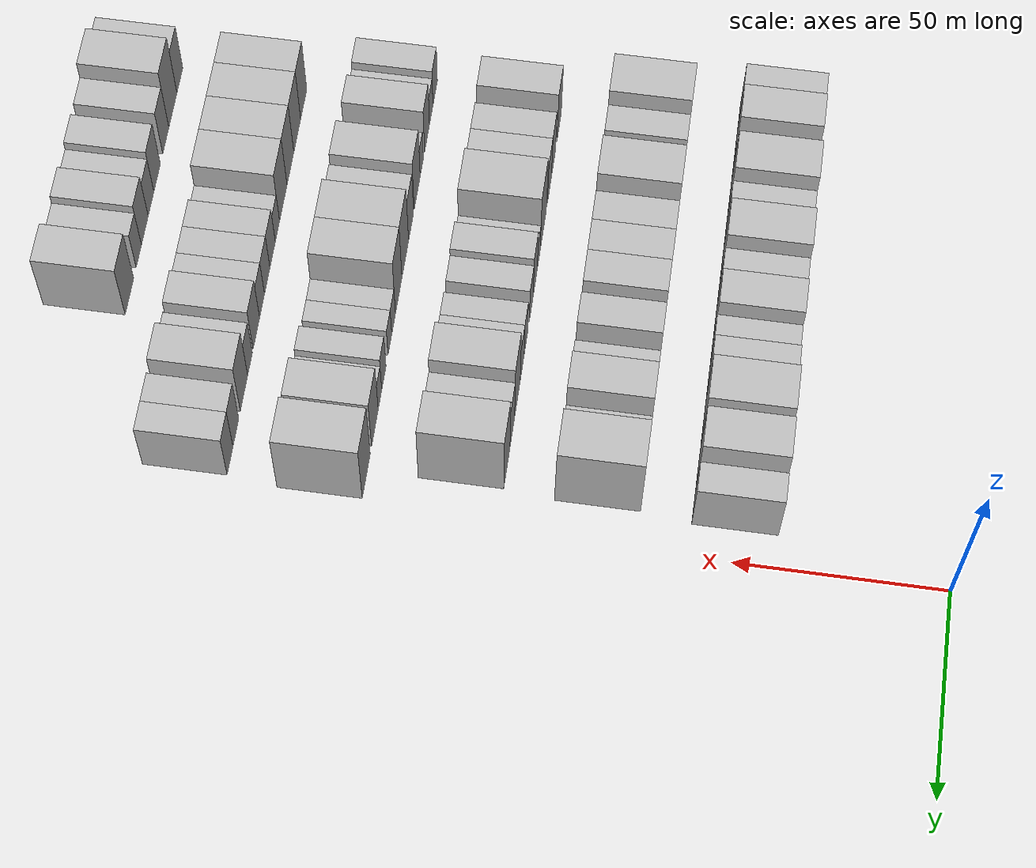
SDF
<sdf version="1.6">
 <world name="default">
  <model name="building_43">
   <static>1</static>
   <pose>50.0000 -120.1200 0 0.000000 0.000000 0.000000</pose>
   <link name="link">
    <pose>0 0 9.00 0 0 0</pose>
    <collision name="collision"><geometry><box><size>20.0000 8.0174 18.0000</size></box></geometry></collision>
    <visual name="visual">
     <cast_shadows>0</cast_shadows>
     <geometry><box><size>20.0000 8.0174 18.0000</size></box></geometry>
     <material>
      <script>
       <uri>model://HANNAS_wall/materials/scripts</uri>
       <uri>model://HANNAS_wall/materials/textures</uri>
       <name>vrc/HANNAS_wall</name>
      </script>
     </material>
    </visual>
   </link>
  </model>
  <model name="building_44">
   <static>1</static>
   <pose>50.0000 -111.3945 0 0.000000 0.000000 0.000000</pose>
   <link name="link">
    <pose>0 0 10.50 0 0 0</pose>
    <collision name="collision"><geometry><box><size>20.0000 9.4337 21.0000</size></box></geometry></collision>
    <visual name="visual">
     <cast_shadows>0</cast_shadows>
     <geometry><box><size>20.0000 9.4337 21.0000</size></box></geometry>
     <material>
      <script>
       <uri>model://HANNAS_wall/materials/scripts</uri>
       <uri>model://HANNAS_wall/materials/textures</uri>
       <name>vrc/HANNAS_wall</name>
      </script>
     </material>
    </visual>
   </link>
  </model>
  <model name="building_45">
   <static>1</static>
   <pose>50.0000 -103.7214 0 0.000000 0.000000 0.000000</pose>
   <link name="link">
    <pose>0 0 6.00 0 0 0</pose>
    <collision name="collision"><geometry><box><size>20.0000 5.9125 12.0000</size></box></geometry></collision>
    <visual name="visual">
     <cast_shadows>0</cast_shadows>
     <geometry><box><size>20.0000 5.9125 12.0000</size></box></geometry>
     <material>
      <script>
       <uri>model://HANNAS_wall/materials/scripts</uri>
       <uri>model://HANNAS_wall/materials/textures</uri>
       <name>vrc/HANNAS_wall</name>
      </script>
     </material>
    </visual>
   </link>
  </model>
  <model name="building_46">
   <static>1</static>
   <pose>50.0000 -95.5847 0 0.000000 0.000000 0.000000</pose>
   <link name="link">
    <pose>0 0 12.00 0 0 0</pose>
    <collision name="collision"><geometry><box><size>20.0000 10.3608 24.0000</size></box></geometry></collision>
    <visual name="visual">
     <cast_shadows>0</cast_shadows>
     <geometry><box><size>20.0000 10.3608 24.0000</size></box></geometry>
     <material>
      <script>
       <uri>model://HANNAS_wall/materials/scripts</uri>
       <uri>model://HANNAS_wall/materials/textures</uri>
       <name>vrc/HANNAS_wall</name>
      </script>
     </material>
    </visual>
   </link>
  </model>
  <model name="building_47">
   <static>1</static>
   <pose>50.0000 -86.1859 0 0.000000 0.000000 0.000000</pose>
   <link name="link">
    <pose>0 0 9.00 0 0 0</pose>
    <collision name="collision"><geometry><box><size>20.0000 8.4368 18.0000</size></box></geometry></collision>
    <visual name="visual">
     <cast_shadows>0</cast_shadows>
     <geometry><box><size>20.0000 8.4368 18.0000</size></box></geometry>
     <material>
      <script>
       <uri>model://HANNAS_wall/materials/scripts</uri>
       <uri>model://HANNAS_wall/materials/textures</uri>
       <name>vrc/HANNAS_wall</name>
      </script>
     </material>
    </visual>
   </link>
  </model>
  <model name="building_48">
   <static>1</static>
   <pose>50.0000 -76.9097 0 0.000000 0.000000 0.000000</pose>
   <link name="link">
    <pose>0 0 12.00 0 0 0</pose>
    <collision name="collision"><geometry><box><size>20.0000 10.1156 24.0000</size></box></geometry></collision>
    <visual name="visual">
     <cast_shadows>0</cast_shadows>
     <geometry><box><size>20.0000 10.1156 24.0000</size></box></geometry>
     <material>
      <script>
       <uri>model://HANNAS_wall/materials/scripts</uri>
       <uri>model://HANNAS_wall/materials/textures</uri>
       <name>vrc/HANNAS_wall</name>
      </script>
     </material>
    </visual>
   </link>
  </model>
  <model name="building_49">
   <static>1</static>
   <pose>50.0000 -68.1743 0 0.000000 0.000000 0.000000</pose>
   <link name="link">
    <pose>0 0 9.00 0 0 0</pose>
    <collision name="collision"><geometry><box><size>20.0000 7.3551 18.0000</size></box></geometry></collision>
    <visual name="visual">
     <cast_shadows>0</cast_shadows>
     <geometry><box><size>20.0000 7.3551 18.0000</size></box></geometry>
     <material>
      <script>
       <uri>model://HANNAS_wall/materials/scripts</uri>
       <uri>model://HANNAS_wall/materials/textures</uri>
       <name>vrc/HANNAS_wall</name>
      </script>
     </material>
    </visual>
   </link>
  </model>
  <model name="building_50">
   <static>1</static>
   <pose>50.0000 -59.9899 0 0.000000 0.000000 0.000000</pose>
   <link name="link">
    <pose>0 0 10.50 0 0 0</pose>
    <collision name="collision"><geometry><box><size>20.0000 9.0137 21.0000</size></box></geometry></collision>
    <visual name="visual">
     <cast_shadows>0</cast_shadows>
     <geometry><box><size>20.0000 9.0137 21.0000</size></box></geometry>
     <material>
      <script>
       <uri>model://HANNAS_wall/materials/scripts</uri>
       <uri>model://HANNAS_wall/materials/textures</uri>
       <name>vrc/HANNAS_wall</name>
      </script>
     </material>
    </visual>
   </link>
  </model>
  <model name="building_51">
   <static>1</static>
   <pose>50.0000 -51.9817 0 0.000000 0.000000 0.000000</pose>
   <link name="link">
    <pose>0 0 7.50 0 0 0</pose>
    <collision name="collision"><geometry><box><size>20.0000 7.0027 15.0000</size></box></geometry></collision>
    <visual name="visual">
     <cast_shadows>0</cast_shadows>
     <geometry><box><size>20.0000 7.0027 15.0000</size></box></geometry>
     <material>
      <script>
       <uri>model://HANNAS_wall/materials/scripts</uri>
       <uri>model://HANNAS_wall/materials/textures</uri>
       <name>vrc/HANNAS_wall</name>
      </script>
     </material>
    </visual>
   </link>
  </model>
  <model name="building_52">
   <static>1</static>
   <pose>50.0000 -44.2990 0 0.000000 0.000000 0.000000</pose>
   <link name="link">
    <pose>0 0 9.00 0 0 0</pose>
    <collision name="collision"><geometry><box><size>20.0000 8.3628 18.0000</size></box></geometry></collision>
    <visual name="visual">
     <cast_shadows>0</cast_shadows>
     <geometry><box><size>20.0000 8.3628 18.0000</size></box></geometry>
     <material>
      <script>
       <uri>model://HANNAS_wall/materials/scripts</uri>
       <uri>model://HANNAS_wall/materials/textures</uri>
       <name>vrc/HANNAS_wall</name>
      </script>
     </material>
    </visual>
   </link>
  </model>
  <model name="building_53">
   <static>1</static>
   <pose>50.0000 -34.5240 0 0.000000 0.000000 0.000000</pose>
   <link name="link">
    <pose>0 0 12.00 0 0 0</pose>
    <collision name="collision"><geometry><box><size>20.0000 11.1871 24.0000</size></box></geometry></collision>
    <visual name="visual">
     <cast_shadows>0</cast_shadows>
     <geometry><box><size>20.0000 11.1871 24.0000</size></box></geometry>
     <material>
      <script>
       <uri>model://HANNAS_wall/materials/scripts</uri>
       <uri>model://HANNAS_wall/materials/textures</uri>
       <name>vrc/HANNAS_wall</name>
      </script>
     </material>
    </visual>
   </link>
  </model>
  <model name="building_54">
   <static>1</static>
   <pose>50.0000 -21.7975 0 0.000000 0.000000 0.000000</pose>
   <link name="link">
    <pose>0 0 12.00 0 0 0</pose>
    <collision name="collision"><geometry><box><size>20.0000 10.2659 24.0000</size></box></geometry></collision>
    <visual name="visual">
     <cast_shadows>0</cast_shadows>
     <geometry><box><size>20.0000 10.2659 24.0000</size></box></geometry>
     <material>
      <script>
       <uri>model://HANNAS_wall/materials/scripts</uri>
       <uri>model://HANNAS_wall/materials/textures</uri>
       <name>vrc/HANNAS_wall</name>
      </script>
     </material>
    </visual>
   </link>
  </model>
  <model name="building_55">
   <static>1</static>
   <pose>50.0000 -11.9538 0 0.000000 0.000000 0.000000</pose>
   <link name="link">
    <pose>0 0 9.00 0 0 0</pose>
    <collision name="collision"><geometry><box><size>20.0000 7.4216 18.0000</size></box></geometry></collision>
    <visual name="visual">
     <cast_shadows>0</cast_shadows>
     <geometry><box><size>20.0000 7.4216 18.0000</size></box></geometry>
     <material>
      <script>
       <uri>model://HANNAS_wall/materials/scripts</uri>
       <uri>model://HANNAS_wall/materials/textures</uri>
       <name>vrc/HANNAS_wall</name>
      </script>
     </material>
    </visual>
   </link>
  </model>
  <model name="building_163">
   <static>1</static>
   <pose>82.0000 -112.9724 0 0.000000 0.000000 0.000000</pose>
   <link name="link">
    <pose>0 0 12.00 0 0 0</pose>
    <collision name="collision"><geometry><box><size>20.0000 10.8261 24.0000</size></box></geometry></collision>
    <visual name="visual">
     <cast_shadows>0</cast_shadows>
     <geometry><box><size>20.0000 10.8261 24.0000</size></box></geometry>
     <material>
      <script>
       <uri>model://HANNAS_wall/materials/scripts</uri>
       <uri>model://HANNAS_wall/materials/textures</uri>
       <name>vrc/HANNAS_wall</name>
      </script>
     </material>
    </visual>
   </link>
  </model>
  <model name="building_164">
   <static>1</static>
   <pose>82.0000 -103.8684 0 0.000000 0.000000 0.000000</pose>
   <link name="link">
    <pose>0 0 9.00 0 0 0</pose>
    <collision name="collision"><geometry><box><size>20.0000 7.3819 18.0000</size></box></geometry></collision>
    <visual name="visual">
     <cast_shadows>0</cast_shadows>
     <geometry><box><size>20.0000 7.3819 18.0000</size></box></geometry>
     <material>
      <script>
       <uri>model://HANNAS_wall/materials/scripts</uri>
       <uri>model://HANNAS_wall/materials/textures</uri>
       <name>vrc/HANNAS_wall</name>
      </script>
     </material>
    </visual>
   </link>
  </model>
  <model name="building_165">
   <static>1</static>
   <pose>82.0000 -97.5596 0 0.000000 0.000000 0.000000</pose>
   <link name="link">
    <pose>0 0 6.00 0 0 0</pose>
    <collision name="collision"><geometry><box><size>20.0000 5.2356 12.0000</size></box></geometry></collision>
    <visual name="visual">
     <cast_shadows>0</cast_shadows>
     <geometry><box><size>20.0000 5.2356 12.0000</size></box></geometry>
     <material>
      <script>
       <uri>model://HANNAS_wall/materials/scripts</uri>
       <uri>model://HANNAS_wall/materials/textures</uri>
       <name>vrc/HANNAS_wall</name>
      </script>
     </material>
    </visual>
   </link>
  </model>
  <model name="building_166">
   <static>1</static>
   <pose>82.0000 -89.5255 0 0.000000 0.000000 0.000000</pose>
   <link name="link">
    <pose>0 0 12.00 0 0 0</pose>
    <collision name="collision"><geometry><box><size>20.0000 10.8327 24.0000</size></box></geometry></collision>
    <visual name="visual">
     <cast_shadows>0</cast_shadows>
     <geometry><box><size>20.0000 10.8327 24.0000</size></box></geometry>
     <material>
      <script>
       <uri>model://HANNAS_wall/materials/scripts</uri>
       <uri>model://HANNAS_wall/materials/textures</uri>
       <name>vrc/HANNAS_wall</name>
      </script>
     </material>
    </visual>
   </link>
  </model>
  <model name="building_167">
   <static>1</static>
   <pose>82.0000 -79.1607 0 0.000000 0.000000 0.000000</pose>
   <link name="link">
    <pose>0 0 9.00 0 0 0</pose>
    <collision name="collision"><geometry><box><size>20.0000 7.8969 18.0000</size></box></geometry></collision>
    <visual name="visual">
     <cast_shadows>0</cast_shadows>
     <geometry><box><size>20.0000 7.8969 18.0000</size></box></geometry>
     <material>
      <script>
       <uri>model://HANNAS_wall/materials/scripts</uri>
       <uri>model://HANNAS_wall/materials/textures</uri>
       <name>vrc/HANNAS_wall</name>
      </script>
     </material>
    </visual>
   </link>
  </model>
  <model name="building_168">
   <static>1</static>
   <pose>82.0000 -71.0392 0 0.000000 0.000000 0.000000</pose>
   <link name="link">
    <pose>0 0 9.00 0 0 0</pose>
    <collision name="collision"><geometry><box><size>20.0000 8.3460 18.0000</size></box></geometry></collision>
    <visual name="visual">
     <cast_shadows>0</cast_shadows>
     <geometry><box><size>20.0000 8.3460 18.0000</size></box></geometry>
     <material>
      <script>
       <uri>model://HANNAS_wall/materials/scripts</uri>
       <uri>model://HANNAS_wall/materials/textures</uri>
       <name>vrc/HANNAS_wall</name>
      </script>
     </material>
    </visual>
   </link>
  </model>
  <model name="building_169">
   <static>1</static>
   <pose>82.0000 -62.5999 0 0.000000 0.000000 0.000000</pose>
   <link name="link">
    <pose>0 0 9.00 0 0 0</pose>
    <collision name="collision"><geometry><box><size>20.0000 8.5327 18.0000</size></box></geometry></collision>
    <visual name="visual">
     <cast_shadows>0</cast_shadows>
     <geometry><box><size>20.0000 8.5327 18.0000</size></box></geometry>
     <material>
      <script>
       <uri>model://HANNAS_wall/materials/scripts</uri>
       <uri>model://HANNAS_wall/materials/textures</uri>
       <name>vrc/HANNAS_wall</name>
      </script>
     </material>
    </visual>
   </link>
  </model>
  <model name="building_170">
   <static>1</static>
   <pose>82.0000 -51.2409 0 0.000000 0.000000 0.000000</pose>
   <link name="link">
    <pose>0 0 9.00 0 0 0</pose>
    <collision name="collision"><geometry><box><size>20.0000 8.1854 18.0000</size></box></geometry></collision>
    <visual name="visual">
     <cast_shadows>0</cast_shadows>
     <geometry><box><size>20.0000 8.1854 18.0000</size></box></geometry>
     <material>
      <script>
       <uri>model://HANNAS_wall/materials/scripts</uri>
       <uri>model://HANNAS_wall/materials/textures</uri>
       <name>vrc/HANNAS_wall</name>
      </script>
     </material>
    </visual>
   </link>
  </model>
  <model name="building_171">
   <static>1</static>
   <pose>82.0000 -41.0867 0 0.000000 0.000000 0.000000</pose>
   <link name="link">
    <pose>0 0 7.50 0 0 0</pose>
    <collision name="collision"><geometry><box><size>20.0000 6.1229 15.0000</size></box></geometry></collision>
    <visual name="visual">
     <cast_shadows>0</cast_shadows>
     <geometry><box><size>20.0000 6.1229 15.0000</size></box></geometry>
     <material>
      <script>
       <uri>model://HANNAS_wall/materials/scripts</uri>
       <uri>model://HANNAS_wall/materials/textures</uri>
       <name>vrc/HANNAS_wall</name>
      </script>
     </material>
    </visual>
   </link>
  </model>
  <model name="building_172">
   <static>1</static>
   <pose>82.0000 -33.2892 0 0.000000 0.000000 0.000000</pose>
   <link name="link">
    <pose>0 0 10.50 0 0 0</pose>
    <collision name="collision"><geometry><box><size>20.0000 9.4721 21.0000</size></box></geometry></collision>
    <visual name="visual">
     <cast_shadows>0</cast_shadows>
     <geometry><box><size>20.0000 9.4721 21.0000</size></box></geometry>
     <material>
      <script>
       <uri>model://HANNAS_wall/materials/scripts</uri>
       <uri>model://HANNAS_wall/materials/textures</uri>
       <name>vrc/HANNAS_wall</name>
      </script>
     </material>
    </visual>
   </link>
  </model>
  <model name="building_173">
   <static>1</static>
   <pose>82.0000 -25.5688 0 0.000000 0.000000 0.000000</pose>
   <link name="link">
    <pose>0 0 6.00 0 0 0</pose>
    <collision name="collision"><geometry><box><size>20.0000 5.9687 12.0000</size></box></geometry></collision>
    <visual name="visual">
     <cast_shadows>0</cast_shadows>
     <geometry><box><size>20.0000 5.9687 12.0000</size></box></geometry>
     <material>
      <script>
       <uri>model://HANNAS_wall/materials/scripts</uri>
       <uri>model://HANNAS_wall/materials/textures</uri>
       <name>vrc/HANNAS_wall</name>
      </script>
     </material>
    </visual>
   </link>
  </model>
  <model name="building_174">
   <static>1</static>
   <pose>82.0000 -15.6817 0 0.000000 0.000000 0.000000</pose>
   <link name="link">
    <pose>0 0 12.00 0 0 0</pose>
    <collision name="collision"><geometry><box><size>20.0000 11.8055 24.0000</size></box></geometry></collision>
    <visual name="visual">
     <cast_shadows>0</cast_shadows>
     <geometry><box><size>20.0000 11.8055 24.0000</size></box></geometry>
     <material>
      <script>
       <uri>model://HANNAS_wall/materials/scripts</uri>
       <uri>model://HANNAS_wall/materials/textures</uri>
       <name>vrc/HANNAS_wall</name>
      </script>
     </material>
    </visual>
   </link>
  </model>
  <model name="building_287">
   <static>1</static>
   <pose>114.0000 -110.9014 0 0.000000 0.000000 0.000000</pose>
   <link name="link">
    <pose>0 0 10.50 0 0 0</pose>
    <collision name="collision"><geometry><box><size>20.0000 8.5832 21.0000</size></box></geometry></collision>
    <visual name="visual">
     <cast_shadows>0</cast_shadows>
     <geometry><box><size>20.0000 8.5832 21.0000</size></box></geometry>
     <material>
      <script>
       <uri>model://HANNAS_wall/materials/scripts</uri>
       <uri>model://HANNAS_wall/materials/textures</uri>
       <name>vrc/HANNAS_wall</name>
      </script>
     </material>
    </visual>
   </link>
  </model>
  <model name="building_288">
   <static>1</static>
   <pose>114.0000 -99.8708 0 0.000000 0.000000 0.000000</pose>
   <link name="link">
    <pose>0 0 9.00 0 0 0</pose>
    <collision name="collision"><geometry><box><size>20.0000 7.4781 18.0000</size></box></geometry></collision>
    <visual name="visual">
     <cast_shadows>0</cast_shadows>
     <geometry><box><size>20.0000 7.4781 18.0000</size></box></geometry>
     <material>
      <script>
       <uri>model://HANNAS_wall/materials/scripts</uri>
       <uri>model://HANNAS_wall/materials/textures</uri>
       <name>vrc/HANNAS_wall</name>
      </script>
     </material>
    </visual>
   </link>
  </model>
  <model name="building_289">
   <static>1</static>
   <pose>114.0000 -92.3805 0 0.000000 0.000000 0.000000</pose>
   <link name="link">
    <pose>0 0 9.00 0 0 0</pose>
    <collision name="collision"><geometry><box><size>20.0000 7.5025 18.0000</size></box></geometry></collision>
    <visual name="visual">
     <cast_shadows>0</cast_shadows>
     <geometry><box><size>20.0000 7.5025 18.0000</size></box></geometry>
     <material>
      <script>
       <uri>model://HANNAS_wall/materials/scripts</uri>
       <uri>model://HANNAS_wall/materials/textures</uri>
       <name>vrc/HANNAS_wall</name>
      </script>
     </material>
    </visual>
   </link>
  </model>
  <model name="building_290">
   <static>1</static>
   <pose>114.0000 -80.9070 0 0.000000 0.000000 0.000000</pose>
   <link name="link">
    <pose>0 0 12.00 0 0 0</pose>
    <collision name="collision"><geometry><box><size>20.0000 11.4444 24.0000</size></box></geometry></collision>
    <visual name="visual">
     <cast_shadows>0</cast_shadows>
     <geometry><box><size>20.0000 11.4444 24.0000</size></box></geometry>
     <material>
      <script>
       <uri>model://HANNAS_wall/materials/scripts</uri>
       <uri>model://HANNAS_wall/materials/textures</uri>
       <name>vrc/HANNAS_wall</name>
      </script>
     </material>
    </visual>
   </link>
  </model>
  <model name="building_291">
   <static>1</static>
   <pose>114.0000 -72.4926 0 0.000000 0.000000 0.000000</pose>
   <link name="link">
    <pose>0 0 6.00 0 0 0</pose>
    <collision name="collision"><geometry><box><size>20.0000 5.3844 12.0000</size></box></geometry></collision>
    <visual name="visual">
     <cast_shadows>0</cast_shadows>
     <geometry><box><size>20.0000 5.3844 12.0000</size></box></geometry>
     <material>
      <script>
       <uri>model://HANNAS_wall/materials/scripts</uri>
       <uri>model://HANNAS_wall/materials/textures</uri>
       <name>vrc/HANNAS_wall</name>
      </script>
     </material>
    </visual>
   </link>
  </model>
  <model name="building_292">
   <static>1</static>
   <pose>114.0000 -66.0645 0 0.000000 0.000000 0.000000</pose>
   <link name="link">
    <pose>0 0 9.00 0 0 0</pose>
    <collision name="collision"><geometry><box><size>20.0000 7.4717 18.0000</size></box></geometry></collision>
    <visual name="visual">
     <cast_shadows>0</cast_shadows>
     <geometry><box><size>20.0000 7.4717 18.0000</size></box></geometry>
     <material>
      <script>
       <uri>model://HANNAS_wall/materials/scripts</uri>
       <uri>model://HANNAS_wall/materials/textures</uri>
       <name>vrc/HANNAS_wall</name>
      </script>
     </material>
    </visual>
   </link>
  </model>
  <model name="building_293">
   <static>1</static>
   <pose>114.0000 -58.8399 0 0.000000 0.000000 0.000000</pose>
   <link name="link">
    <pose>0 0 7.50 0 0 0</pose>
    <collision name="collision"><geometry><box><size>20.0000 6.9776 15.0000</size></box></geometry></collision>
    <visual name="visual">
     <cast_shadows>0</cast_shadows>
     <geometry><box><size>20.0000 6.9776 15.0000</size></box></geometry>
     <material>
      <script>
       <uri>model://HANNAS_wall/materials/scripts</uri>
       <uri>model://HANNAS_wall/materials/textures</uri>
       <name>vrc/HANNAS_wall</name>
      </script>
     </material>
    </visual>
   </link>
  </model>
  <model name="building_294">
   <static>1</static>
   <pose>114.0000 -49.3374 0 0.000000 0.000000 0.000000</pose>
   <link name="link">
    <pose>0 0 7.50 0 0 0</pose>
    <collision name="collision"><geometry><box><size>20.0000 6.0274 15.0000</size></box></geometry></collision>
    <visual name="visual">
     <cast_shadows>0</cast_shadows>
     <geometry><box><size>20.0000 6.0274 15.0000</size></box></geometry>
     <material>
      <script>
       <uri>model://HANNAS_wall/materials/scripts</uri>
       <uri>model://HANNAS_wall/materials/textures</uri>
       <name>vrc/HANNAS_wall</name>
      </script>
     </material>
    </visual>
   </link>
  </model>
  <model name="building_295">
   <static>1</static>
   <pose>114.0000 -42.8433 0 0.000000 0.000000 0.000000</pose>
   <link name="link">
    <pose>0 0 7.50 0 0 0</pose>
    <collision name="collision"><geometry><box><size>20.0000 6.9608 15.0000</size></box></geometry></collision>
    <visual name="visual">
     <cast_shadows>0</cast_shadows>
     <geometry><box><size>20.0000 6.9608 15.0000</size></box></geometry>
     <material>
      <script>
       <uri>model://HANNAS_wall/materials/scripts</uri>
       <uri>model://HANNAS_wall/materials/textures</uri>
       <name>vrc/HANNAS_wall</name>
      </script>
     </material>
    </visual>
   </link>
  </model>
  <model name="building_296">
   <static>1</static>
   <pose>114.0000 -34.4415 0 0.000000 0.000000 0.000000</pose>
   <link name="link">
    <pose>0 0 12.00 0 0 0</pose>
    <collision name="collision"><geometry><box><size>20.0000 9.8428 24.0000</size></box></geometry></collision>
    <visual name="visual">
     <cast_shadows>0</cast_shadows>
     <geometry><box><size>20.0000 9.8428 24.0000</size></box></geometry>
     <material>
      <script>
       <uri>model://HANNAS_wall/materials/scripts</uri>
       <uri>model://HANNAS_wall/materials/textures</uri>
       <name>vrc/HANNAS_wall</name>
      </script>
     </material>
    </visual>
   </link>
  </model>
  <model name="building_297">
   <static>1</static>
   <pose>114.0000 -25.5507 0 0.000000 0.000000 0.000000</pose>
   <link name="link">
    <pose>0 0 9.00 0 0 0</pose>
    <collision name="collision"><geometry><box><size>20.0000 7.9387 18.0000</size></box></geometry></collision>
    <visual name="visual">
     <cast_shadows>0</cast_shadows>
     <geometry><box><size>20.0000 7.9387 18.0000</size></box></geometry>
     <material>
      <script>
       <uri>model://HANNAS_wall/materials/scripts</uri>
       <uri>model://HANNAS_wall/materials/textures</uri>
       <name>vrc/HANNAS_wall</name>
      </script>
     </material>
    </visual>
   </link>
  </model>
  <model name="building_298">
   <static>1</static>
   <pose>114.0000 -16.3023 0 0.000000 0.000000 0.000000</pose>
   <link name="link">
    <pose>0 0 12.00 0 0 0</pose>
    <collision name="collision"><geometry><box><size>20.0000 10.5582 24.0000</size></box></geometry></collision>
    <visual name="visual">
     <cast_shadows>0</cast_shadows>
     <geometry><box><size>20.0000 10.5582 24.0000</size></box></geometry>
     <material>
      <script>
       <uri>model://HANNAS_wall/materials/scripts</uri>
       <uri>model://HANNAS_wall/materials/textures</uri>
       <name>vrc/HANNAS_wall</name>
      </script>
     </material>
    </visual>
   </link>
  </model>
  <model name="building_406">
   <static>1</static>
   <pose>146.0000 -116.5902 0 0.000000 0.000000 0.000000</pose>
   <link name="link">
    <pose>0 0 7.50 0 0 0</pose>
    <collision name="collision"><geometry><box><size>20.0000 7.3615 15.0000</size></box></geometry></collision>
    <visual name="visual">
     <cast_shadows>0</cast_shadows>
     <geometry><box><size>20.0000 7.3615 15.0000</size></box></geometry>
     <material>
      <script>
       <uri>model://HANNAS_wall/materials/scripts</uri>
       <uri>model://HANNAS_wall/materials/textures</uri>
       <name>vrc/HANNAS_wall</name>
      </script>
     </material>
    </visual>
   </link>
  </model>
  <model name="building_407">
   <static>1</static>
   <pose>146.0000 -110.0166 0 0.000000 0.000000 0.000000</pose>
   <link name="link">
    <pose>0 0 6.00 0 0 0</pose>
    <collision name="collision"><geometry><box><size>20.0000 5.7856 12.0000</size></box></geometry></collision>
    <visual name="visual">
     <cast_shadows>0</cast_shadows>
     <geometry><box><size>20.0000 5.7856 12.0000</size></box></geometry>
     <material>
      <script>
       <uri>model://HANNAS_wall/materials/scripts</uri>
       <uri>model://HANNAS_wall/materials/textures</uri>
       <name>vrc/HANNAS_wall</name>
      </script>
     </material>
    </visual>
   </link>
  </model>
  <model name="building_408">
   <static>1</static>
   <pose>146.0000 -103.1056 0 0.000000 0.000000 0.000000</pose>
   <link name="link">
    <pose>0 0 9.00 0 0 0</pose>
    <collision name="collision"><geometry><box><size>20.0000 8.0364 18.0000</size></box></geometry></collision>
    <visual name="visual">
     <cast_shadows>0</cast_shadows>
     <geometry><box><size>20.0000 8.0364 18.0000</size></box></geometry>
     <material>
      <script>
       <uri>model://HANNAS_wall/materials/scripts</uri>
       <uri>model://HANNAS_wall/materials/textures</uri>
       <name>vrc/HANNAS_wall</name>
      </script>
     </material>
    </visual>
   </link>
  </model>
  <model name="building_409">
   <static>1</static>
   <pose>146.0000 -94.4879 0 0.000000 0.000000 0.000000</pose>
   <link name="link">
    <pose>0 0 6.00 0 0 0</pose>
    <collision name="collision"><geometry><box><size>20.0000 5.1990 12.0000</size></box></geometry></collision>
    <visual name="visual">
     <cast_shadows>0</cast_shadows>
     <geometry><box><size>20.0000 5.1990 12.0000</size></box></geometry>
     <material>
      <script>
       <uri>model://HANNAS_wall/materials/scripts</uri>
       <uri>model://HANNAS_wall/materials/textures</uri>
       <name>vrc/HANNAS_wall</name>
      </script>
     </material>
    </visual>
   </link>
  </model>
  <model name="building_410">
   <static>1</static>
   <pose>146.0000 -87.0963 0 0.000000 0.000000 0.000000</pose>
   <link name="link">
    <pose>0 0 10.50 0 0 0</pose>
    <collision name="collision"><geometry><box><size>20.0000 9.5842 21.0000</size></box></geometry></collision>
    <visual name="visual">
     <cast_shadows>0</cast_shadows>
     <geometry><box><size>20.0000 9.5842 21.0000</size></box></geometry>
     <material>
      <script>
       <uri>model://HANNAS_wall/materials/scripts</uri>
       <uri>model://HANNAS_wall/materials/textures</uri>
       <name>vrc/HANNAS_wall</name>
      </script>
     </material>
    </visual>
   </link>
  </model>
  <model name="building_411">
   <static>1</static>
   <pose>146.0000 -77.3569 0 0.000000 0.000000 0.000000</pose>
   <link name="link">
    <pose>0 0 9.00 0 0 0</pose>
    <collision name="collision"><geometry><box><size>20.0000 7.8945 18.0000</size></box></geometry></collision>
    <visual name="visual">
     <cast_shadows>0</cast_shadows>
     <geometry><box><size>20.0000 7.8945 18.0000</size></box></geometry>
     <material>
      <script>
       <uri>model://HANNAS_wall/materials/scripts</uri>
       <uri>model://HANNAS_wall/materials/textures</uri>
       <name>vrc/HANNAS_wall</name>
      </script>
     </material>
    </visual>
   </link>
  </model>
  <model name="building_412">
   <static>1</static>
   <pose>146.0000 -68.2200 0 0.000000 0.000000 0.000000</pose>
   <link name="link">
    <pose>0 0 12.00 0 0 0</pose>
    <collision name="collision"><geometry><box><size>20.0000 10.3793 24.0000</size></box></geometry></collision>
    <visual name="visual">
     <cast_shadows>0</cast_shadows>
     <geometry><box><size>20.0000 10.3793 24.0000</size></box></geometry>
     <material>
      <script>
       <uri>model://HANNAS_wall/materials/scripts</uri>
       <uri>model://HANNAS_wall/materials/textures</uri>
       <name>vrc/HANNAS_wall</name>
      </script>
     </material>
    </visual>
   </link>
  </model>
  <model name="building_413">
   <static>1</static>
   <pose>146.0000 -58.0554 0 0.000000 0.000000 0.000000</pose>
   <link name="link">
    <pose>0 0 12.00 0 0 0</pose>
    <collision name="collision"><geometry><box><size>20.0000 9.9500 24.0000</size></box></geometry></collision>
    <visual name="visual">
     <cast_shadows>0</cast_shadows>
     <geometry><box><size>20.0000 9.9500 24.0000</size></box></geometry>
     <material>
      <script>
       <uri>model://HANNAS_wall/materials/scripts</uri>
       <uri>model://HANNAS_wall/materials/textures</uri>
       <name>vrc/HANNAS_wall</name>
      </script>
     </material>
    </visual>
   </link>
  </model>
  <model name="building_414">
   <static>1</static>
   <pose>146.0000 -50.2334 0 0.000000 0.000000 0.000000</pose>
   <link name="link">
    <pose>0 0 6.00 0 0 0</pose>
    <collision name="collision"><geometry><box><size>20.0000 5.6941 12.0000</size></box></geometry></collision>
    <visual name="visual">
     <cast_shadows>0</cast_shadows>
     <geometry><box><size>20.0000 5.6941 12.0000</size></box></geometry>
     <material>
      <script>
       <uri>model://HANNAS_wall/materials/scripts</uri>
       <uri>model://HANNAS_wall/materials/textures</uri>
       <name>vrc/HANNAS_wall</name>
      </script>
     </material>
    </visual>
   </link>
  </model>
  <model name="building_415">
   <static>1</static>
   <pose>146.0000 -44.5513 0 0.000000 0.000000 0.000000</pose>
   <link name="link">
    <pose>0 0 6.00 0 0 0</pose>
    <collision name="collision"><geometry><box><size>20.0000 5.6699 12.0000</size></box></geometry></collision>
    <visual name="visual">
     <cast_shadows>0</cast_shadows>
     <geometry><box><size>20.0000 5.6699 12.0000</size></box></geometry>
     <material>
      <script>
       <uri>model://HANNAS_wall/materials/scripts</uri>
       <uri>model://HANNAS_wall/materials/textures</uri>
       <name>vrc/HANNAS_wall</name>
      </script>
     </material>
    </visual>
   </link>
  </model>
  <model name="building_416">
   <static>1</static>
   <pose>146.0000 -35.5529 0 0.000000 0.000000 0.000000</pose>
   <link name="link">
    <pose>0 0 7.50 0 0 0</pose>
    <collision name="collision"><geometry><box><size>20.0000 6.3269 15.0000</size></box></geometry></collision>
    <visual name="visual">
     <cast_shadows>0</cast_shadows>
     <geometry><box><size>20.0000 6.3269 15.0000</size></box></geometry>
     <material>
      <script>
       <uri>model://HANNAS_wall/materials/scripts</uri>
       <uri>model://HANNAS_wall/materials/textures</uri>
       <name>vrc/HANNAS_wall</name>
      </script>
     </material>
    </visual>
   </link>
  </model>
  <model name="building_417">
   <static>1</static>
   <pose>146.0000 -29.7555 0 0.000000 0.000000 0.000000</pose>
   <link name="link">
    <pose>0 0 6.00 0 0 0</pose>
    <collision name="collision"><geometry><box><size>20.0000 5.2680 12.0000</size></box></geometry></collision>
    <visual name="visual">
     <cast_shadows>0</cast_shadows>
     <geometry><box><size>20.0000 5.2680 12.0000</size></box></geometry>
     <material>
      <script>
       <uri>model://HANNAS_wall/materials/scripts</uri>
       <uri>model://HANNAS_wall/materials/textures</uri>
       <name>vrc/HANNAS_wall</name>
      </script>
     </material>
    </visual>
   </link>
  </model>
  <model name="building_418">
   <static>1</static>
   <pose>146.0000 -22.2779 0 0.000000 0.000000 0.000000</pose>
   <link name="link">
    <pose>0 0 10.50 0 0 0</pose>
    <collision name="collision"><geometry><box><size>20.0000 9.6874 21.0000</size></box></geometry></collision>
    <visual name="visual">
     <cast_shadows>0</cast_shadows>
     <geometry><box><size>20.0000 9.6874 21.0000</size></box></geometry>
     <material>
      <script>
       <uri>model://HANNAS_wall/materials/scripts</uri>
       <uri>model://HANNAS_wall/materials/textures</uri>
       <name>vrc/HANNAS_wall</name>
      </script>
     </material>
    </visual>
   </link>
  </model>
  <model name="building_419">
   <static>1</static>
   <pose>146.0000 -9.7189 0 0.000000 0.000000 0.000000</pose>
   <link name="link">
    <pose>0 0 12.00 0 0 0</pose>
    <collision name="collision"><geometry><box><size>20.0000 11.4305 24.0000</size></box></geometry></collision>
    <visual name="visual">
     <cast_shadows>0</cast_shadows>
     <geometry><box><size>20.0000 11.4305 24.0000</size></box></geometry>
     <material>
      <script>
       <uri>model://HANNAS_wall/materials/scripts</uri>
       <uri>model://HANNAS_wall/materials/textures</uri>
       <name>vrc/HANNAS_wall</name>
      </script>
     </material>
    </visual>
   </link>
  </model>
  <model name="building_525">
   <static>1</static>
   <pose>178.0000 -108.7160 0 0.000000 0.000000 0.000000</pose>
   <link name="link">
    <pose>0 0 10.50 0 0 0</pose>
    <collision name="collision"><geometry><box><size>20.0000 8.9153 21.0000</size></box></geometry></collision>
    <visual name="visual">
     <cast_shadows>0</cast_shadows>
     <geometry><box><size>20.0000 8.9153 21.0000</size></box></geometry>
     <material>
      <script>
       <uri>model://HANNAS_wall/materials/scripts</uri>
       <uri>model://HANNAS_wall/materials/textures</uri>
       <name>vrc/HANNAS_wall</name>
      </script>
     </material>
    </visual>
   </link>
  </model>
  <model name="building_526">
   <static>1</static>
   <pose>178.0000 -99.3766 0 0.000000 0.000000 0.000000</pose>
   <link name="link">
    <pose>0 0 10.50 0 0 0</pose>
    <collision name="collision"><geometry><box><size>20.0000 9.7635 21.0000</size></box></geometry></collision>
    <visual name="visual">
     <cast_shadows>0</cast_shadows>
     <geometry><box><size>20.0000 9.7635 21.0000</size></box></geometry>
     <material>
      <script>
       <uri>model://HANNAS_wall/materials/scripts</uri>
       <uri>model://HANNAS_wall/materials/textures</uri>
       <name>vrc/HANNAS_wall</name>
      </script>
     </material>
    </visual>
   </link>
  </model>
  <model name="building_527">
   <static>1</static>
   <pose>178.0000 -89.6953 0 0.000000 0.000000 0.000000</pose>
   <link name="link">
    <pose>0 0 10.50 0 0 0</pose>
    <collision name="collision"><geometry><box><size>20.0000 9.5991 21.0000</size></box></geometry></collision>
    <visual name="visual">
     <cast_shadows>0</cast_shadows>
     <geometry><box><size>20.0000 9.5991 21.0000</size></box></geometry>
     <material>
      <script>
       <uri>model://HANNAS_wall/materials/scripts</uri>
       <uri>model://HANNAS_wall/materials/textures</uri>
       <name>vrc/HANNAS_wall</name>
      </script>
     </material>
    </visual>
   </link>
  </model>
  <model name="building_528">
   <static>1</static>
   <pose>178.0000 -79.7168 0 0.000000 0.000000 0.000000</pose>
   <link name="link">
    <pose>0 0 10.50 0 0 0</pose>
    <collision name="collision"><geometry><box><size>20.0000 10.3578 21.0000</size></box></geometry></collision>
    <visual name="visual">
     <cast_shadows>0</cast_shadows>
     <geometry><box><size>20.0000 10.3578 21.0000</size></box></geometry>
     <material>
      <script>
       <uri>model://HANNAS_wall/materials/scripts</uri>
       <uri>model://HANNAS_wall/materials/textures</uri>
       <name>vrc/HANNAS_wall</name>
      </script>
     </material>
    </visual>
   </link>
  </model>
  <model name="building_529">
   <static>1</static>
   <pose>178.0000 -71.5998 0 0.000000 0.000000 0.000000</pose>
   <link name="link">
    <pose>0 0 6.00 0 0 0</pose>
    <collision name="collision"><geometry><box><size>20.0000 5.8762 12.0000</size></box></geometry></collision>
    <visual name="visual">
     <cast_shadows>0</cast_shadows>
     <geometry><box><size>20.0000 5.8762 12.0000</size></box></geometry>
     <material>
      <script>
       <uri>model://HANNAS_wall/materials/scripts</uri>
       <uri>model://HANNAS_wall/materials/textures</uri>
       <name>vrc/HANNAS_wall</name>
      </script>
     </material>
    </visual>
   </link>
  </model>
  <model name="building_530">
   <static>1</static>
   <pose>178.0000 -64.9650 0 0.000000 0.000000 0.000000</pose>
   <link name="link">
    <pose>0 0 7.50 0 0 0</pose>
    <collision name="collision"><geometry><box><size>20.0000 7.3934 15.0000</size></box></geometry></collision>
    <visual name="visual">
     <cast_shadows>0</cast_shadows>
     <geometry><box><size>20.0000 7.3934 15.0000</size></box></geometry>
     <material>
      <script>
       <uri>model://HANNAS_wall/materials/scripts</uri>
       <uri>model://HANNAS_wall/materials/textures</uri>
       <name>vrc/HANNAS_wall</name>
      </script>
     </material>
    </visual>
   </link>
  </model>
  <model name="building_531">
   <static>1</static>
   <pose>178.0000 -57.6113 0 0.000000 0.000000 0.000000</pose>
   <link name="link">
    <pose>0 0 7.50 0 0 0</pose>
    <collision name="collision"><geometry><box><size>20.0000 7.3139 15.0000</size></box></geometry></collision>
    <visual name="visual">
     <cast_shadows>0</cast_shadows>
     <geometry><box><size>20.0000 7.3139 15.0000</size></box></geometry>
     <material>
      <script>
       <uri>model://HANNAS_wall/materials/scripts</uri>
       <uri>model://HANNAS_wall/materials/textures</uri>
       <name>vrc/HANNAS_wall</name>
      </script>
     </material>
    </visual>
   </link>
  </model>
  <model name="building_532">
   <static>1</static>
   <pose>178.0000 -50.6766 0 0.000000 0.000000 0.000000</pose>
   <link name="link">
    <pose>0 0 7.50 0 0 0</pose>
    <collision name="collision"><geometry><box><size>20.0000 6.5556 15.0000</size></box></geometry></collision>
    <visual name="visual">
     <cast_shadows>0</cast_shadows>
     <geometry><box><size>20.0000 6.5556 15.0000</size></box></geometry>
     <material>
      <script>
       <uri>model://HANNAS_wall/materials/scripts</uri>
       <uri>model://HANNAS_wall/materials/textures</uri>
       <name>vrc/HANNAS_wall</name>
      </script>
     </material>
    </visual>
   </link>
  </model>
  <model name="building_533">
   <static>1</static>
   <pose>178.0000 -43.1121 0 0.000000 0.000000 0.000000</pose>
   <link name="link">
    <pose>0 0 9.00 0 0 0</pose>
    <collision name="collision"><geometry><box><size>20.0000 8.5734 18.0000</size></box></geometry></collision>
    <visual name="visual">
     <cast_shadows>0</cast_shadows>
     <geometry><box><size>20.0000 8.5734 18.0000</size></box></geometry>
     <material>
      <script>
       <uri>model://HANNAS_wall/materials/scripts</uri>
       <uri>model://HANNAS_wall/materials/textures</uri>
       <name>vrc/HANNAS_wall</name>
      </script>
     </material>
    </visual>
   </link>
  </model>
  <model name="building_534">
   <static>1</static>
   <pose>178.0000 -34.7765 0 0.000000 0.000000 0.000000</pose>
   <link name="link">
    <pose>0 0 7.50 0 0 0</pose>
    <collision name="collision"><geometry><box><size>20.0000 6.0978 15.0000</size></box></geometry></collision>
    <visual name="visual">
     <cast_shadows>0</cast_shadows>
     <geometry><box><size>20.0000 6.0978 15.0000</size></box></geometry>
     <material>
      <script>
       <uri>model://HANNAS_wall/materials/scripts</uri>
       <uri>model://HANNAS_wall/materials/textures</uri>
       <name>vrc/HANNAS_wall</name>
      </script>
     </material>
    </visual>
   </link>
  </model>
  <model name="building_535">
   <static>1</static>
   <pose>178.0000 -26.9513 0 0.000000 0.000000 0.000000</pose>
   <link name="link">
    <pose>0 0 10.50 0 0 0</pose>
    <collision name="collision"><geometry><box><size>20.0000 9.5526 21.0000</size></box></geometry></collision>
    <visual name="visual">
     <cast_shadows>0</cast_shadows>
     <geometry><box><size>20.0000 9.5526 21.0000</size></box></geometry>
     <material>
      <script>
       <uri>model://HANNAS_wall/materials/scripts</uri>
       <uri>model://HANNAS_wall/materials/textures</uri>
       <name>vrc/HANNAS_wall</name>
      </script>
     </material>
    </visual>
   </link>
  </model>
  <model name="building_536">
   <static>1</static>
   <pose>178.0000 -16.5328 0 0.000000 0.000000 0.000000</pose>
   <link name="link">
    <pose>0 0 9.00 0 0 0</pose>
    <collision name="collision"><geometry><box><size>20.0000 7.2843 18.0000</size></box></geometry></collision>
    <visual name="visual">
     <cast_shadows>0</cast_shadows>
     <geometry><box><size>20.0000 7.2843 18.0000</size></box></geometry>
     <material>
      <script>
       <uri>model://HANNAS_wall/materials/scripts</uri>
       <uri>model://HANNAS_wall/materials/textures</uri>
       <name>vrc/HANNAS_wall</name>
      </script>
     </material>
    </visual>
   </link>
  </model>
  <model name="building_537">
   <static>1</static>
   <pose>178.0000 -9.1745 0 0.000000 0.000000 0.000000</pose>
   <link name="link">
    <pose>0 0 9.00 0 0 0</pose>
    <collision name="collision"><geometry><box><size>20.0000 7.4325 18.0000</size></box></geometry></collision>
    <visual name="visual">
     <cast_shadows>0</cast_shadows>
     <geometry><box><size>20.0000 7.4325 18.0000</size></box></geometry>
     <material>
      <script>
       <uri>model://HANNAS_wall/materials/scripts</uri>
       <uri>model://HANNAS_wall/materials/textures</uri>
       <name>vrc/HANNAS_wall</name>
      </script>
     </material>
    </visual>
   </link>
  </model>
  <model name="building_648">
   <static>1</static>
   <pose>210.0000 -111.3455 0 0.000000 0.000000 0.000000</pose>
   <link name="link">
    <pose>0 0 9.00 0 0 0</pose>
    <collision name="collision"><geometry><box><size>20.0000 7.5696 18.0000</size></box></geometry></collision>
    <visual name="visual">
     <cast_shadows>0</cast_shadows>
     <geometry><box><size>20.0000 7.5696 18.0000</size></box></geometry>
     <material>
      <script>
       <uri>model://HANNAS_wall/materials/scripts</uri>
       <uri>model://HANNAS_wall/materials/textures</uri>
       <name>vrc/HANNAS_wall</name>
      </script>
     </material>
    </visual>
   </link>
  </model>
  <model name="building_649">
   <static>1</static>
   <pose>210.0000 -102.3684 0 0.000000 0.000000 0.000000</pose>
   <link name="link">
    <pose>0 0 12.00 0 0 0</pose>
    <collision name="collision"><geometry><box><size>20.0000 10.3845 24.0000</size></box></geometry></collision>
    <visual name="visual">
     <cast_shadows>0</cast_shadows>
     <geometry><box><size>20.0000 10.3845 24.0000</size></box></geometry>
     <material>
      <script>
       <uri>model://HANNAS_wall/materials/scripts</uri>
       <uri>model://HANNAS_wall/materials/textures</uri>
       <name>vrc/HANNAS_wall</name>
      </script>
     </material>
    </visual>
   </link>
  </model>
  <model name="building_650">
   <static>1</static>
   <pose>210.0000 -93.3260 0 0.000000 0.000000 0.000000</pose>
   <link name="link">
    <pose>0 0 9.00 0 0 0</pose>
    <collision name="collision"><geometry><box><size>20.0000 7.7004 18.0000</size></box></geometry></collision>
    <visual name="visual">
     <cast_shadows>0</cast_shadows>
     <geometry><box><size>20.0000 7.7004 18.0000</size></box></geometry>
     <material>
      <script>
       <uri>model://HANNAS_wall/materials/scripts</uri>
       <uri>model://HANNAS_wall/materials/textures</uri>
       <name>vrc/HANNAS_wall</name>
      </script>
     </material>
    </visual>
   </link>
  </model>
  <model name="building_651">
   <static>1</static>
   <pose>210.0000 -82.4397 0 0.000000 0.000000 0.000000</pose>
   <link name="link">
    <pose>0 0 9.00 0 0 0</pose>
    <collision name="collision"><geometry><box><size>20.0000 8.0722 18.0000</size></box></geometry></collision>
    <visual name="visual">
     <cast_shadows>0</cast_shadows>
     <geometry><box><size>20.0000 8.0722 18.0000</size></box></geometry>
     <material>
      <script>
       <uri>model://HANNAS_wall/materials/scripts</uri>
       <uri>model://HANNAS_wall/materials/textures</uri>
       <name>vrc/HANNAS_wall</name>
      </script>
     </material>
    </visual>
   </link>
  </model>
  <model name="building_652">
   <static>1</static>
   <pose>210.0000 -74.9066 0 0.000000 0.000000 0.000000</pose>
   <link name="link">
    <pose>0 0 7.50 0 0 0</pose>
    <collision name="collision"><geometry><box><size>20.0000 6.9940 15.0000</size></box></geometry></collision>
    <visual name="visual">
     <cast_shadows>0</cast_shadows>
     <geometry><box><size>20.0000 6.9940 15.0000</size></box></geometry>
     <material>
      <script>
       <uri>model://HANNAS_wall/materials/scripts</uri>
       <uri>model://HANNAS_wall/materials/textures</uri>
       <name>vrc/HANNAS_wall</name>
      </script>
     </material>
    </visual>
   </link>
  </model>
  <model name="building_653">
   <static>1</static>
   <pose>210.0000 -67.2851 0 0.000000 0.000000 0.000000</pose>
   <link name="link">
    <pose>0 0 9.00 0 0 0</pose>
    <collision name="collision"><geometry><box><size>20.0000 8.2489 18.0000</size></box></geometry></collision>
    <visual name="visual">
     <cast_shadows>0</cast_shadows>
     <geometry><box><size>20.0000 8.2489 18.0000</size></box></geometry>
     <material>
      <script>
       <uri>model://HANNAS_wall/materials/scripts</uri>
       <uri>model://HANNAS_wall/materials/textures</uri>
       <name>vrc/HANNAS_wall</name>
      </script>
     </material>
    </visual>
   </link>
  </model>
  <model name="building_654">
   <static>1</static>
   <pose>210.0000 -59.9781 0 0.000000 0.000000 0.000000</pose>
   <link name="link">
    <pose>0 0 7.50 0 0 0</pose>
    <collision name="collision"><geometry><box><size>20.0000 6.3652 15.0000</size></box></geometry></collision>
    <visual name="visual">
     <cast_shadows>0</cast_shadows>
     <geometry><box><size>20.0000 6.3652 15.0000</size></box></geometry>
     <material>
      <script>
       <uri>model://HANNAS_wall/materials/scripts</uri>
       <uri>model://HANNAS_wall/materials/textures</uri>
       <name>vrc/HANNAS_wall</name>
      </script>
     </material>
    </visual>
   </link>
  </model>
  <model name="building_655">
   <static>1</static>
   <pose>210.0000 -48.7348 0 0.000000 0.000000 0.000000</pose>
   <link name="link">
    <pose>0 0 10.50 0 0 0</pose>
    <collision name="collision"><geometry><box><size>20.0000 10.1213 21.0000</size></box></geometry></collision>
    <visual name="visual">
     <cast_shadows>0</cast_shadows>
     <geometry><box><size>20.0000 10.1213 21.0000</size></box></geometry>
     <material>
      <script>
       <uri>model://HANNAS_wall/materials/scripts</uri>
       <uri>model://HANNAS_wall/materials/textures</uri>
       <name>vrc/HANNAS_wall</name>
      </script>
     </material>
    </visual>
   </link>
  </model>
 </world>
</sdf>
